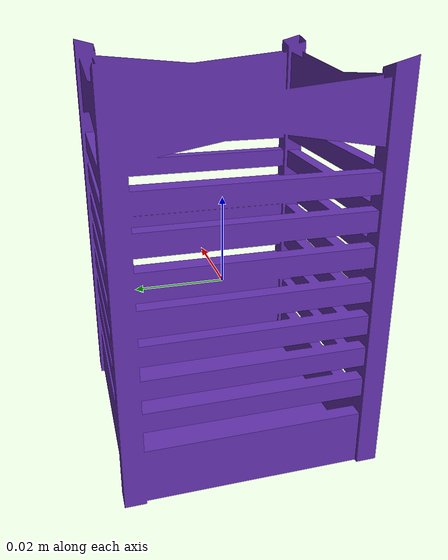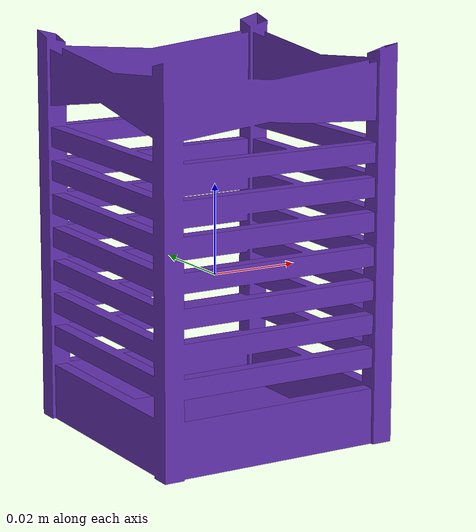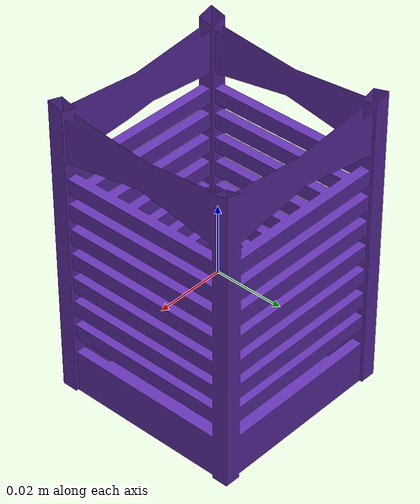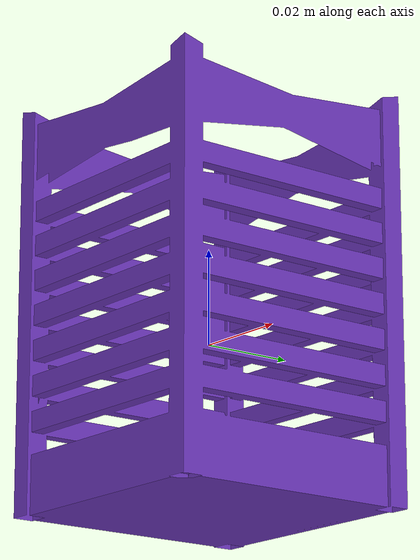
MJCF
<mujoco model="top_watertight_tiny">
  <default>
    <default group="2" type="mesh" contype="0" conaffinity="0">
      <geom group="2" type="mesh" contype="0" conaffinity="0"/>
    </default>
    <default group="3" type="mesh">
      <geom group="3" type="mesh"/>
    </default>
  </default>
  <asset>
    <mesh file="top_watertight_tiny.obj"/>
    <mesh file="top_watertight_tiny_collision_0.obj"/>
    <mesh file="top_watertight_tiny_collision_1.obj"/>
    <mesh file="top_watertight_tiny_collision_2.obj"/>
    <mesh file="top_watertight_tiny_collision_3.obj"/>
    <mesh file="top_watertight_tiny_collision_4.obj"/>
    <mesh file="top_watertight_tiny_collision_5.obj"/>
    <mesh file="top_watertight_tiny_collision_6.obj"/>
    <mesh file="top_watertight_tiny_collision_7.obj"/>
    <mesh file="top_watertight_tiny_collision_8.obj"/>
    <mesh file="top_watertight_tiny_collision_9.obj"/>
    <mesh file="top_watertight_tiny_collision_10.obj"/>
    <mesh file="top_watertight_tiny_collision_11.obj"/>
    <mesh file="top_watertight_tiny_collision_12.obj"/>
    <mesh file="top_watertight_tiny_collision_13.obj"/>
    <mesh file="top_watertight_tiny_collision_14.obj"/>
    <mesh file="top_watertight_tiny_collision_15.obj"/>
    <mesh file="top_watertight_tiny_collision_16.obj"/>
    <mesh file="top_watertight_tiny_collision_17.obj"/>
    <mesh file="top_watertight_tiny_collision_18.obj"/>
    <mesh file="top_watertight_tiny_collision_19.obj"/>
    <mesh file="top_watertight_tiny_collision_20.obj"/>
    <mesh file="top_watertight_tiny_collision_21.obj"/>
    <mesh file="top_watertight_tiny_collision_22.obj"/>
    <mesh file="top_watertight_tiny_collision_23.obj"/>
    <mesh file="top_watertight_tiny_collision_24.obj"/>
    <mesh file="top_watertight_tiny_collision_25.obj"/>
    <mesh file="top_watertight_tiny_collision_26.obj"/>
    <mesh file="top_watertight_tiny_collision_27.obj"/>
    <mesh file="top_watertight_tiny_collision_28.obj"/>
    <mesh file="top_watertight_tiny_collision_29.obj"/>
    <mesh file="top_watertight_tiny_collision_30.obj"/>
    <mesh file="top_watertight_tiny_collision_31.obj"/>
    <mesh file="top_watertight_tiny_collision_32.obj"/>
    <mesh file="top_watertight_tiny_collision_33.obj"/>
    <mesh file="top_watertight_tiny_collision_34.obj"/>
    <mesh file="top_watertight_tiny_collision_35.obj"/>
    <mesh file="top_watertight_tiny_collision_36.obj"/>
    <mesh file="top_watertight_tiny_collision_37.obj"/>
    <mesh file="top_watertight_tiny_collision_38.obj"/>
    <mesh file="top_watertight_tiny_collision_39.obj"/>
    <mesh file="top_watertight_tiny_collision_40.obj"/>
    <mesh file="top_watertight_tiny_collision_41.obj"/>
    <mesh file="top_watertight_tiny_collision_42.obj"/>
    <mesh file="top_watertight_tiny_collision_43.obj"/>
    <mesh file="top_watertight_tiny_collision_44.obj"/>
    <mesh file="top_watertight_tiny_collision_45.obj"/>
    <mesh file="top_watertight_tiny_collision_46.obj"/>
    <mesh file="top_watertight_tiny_collision_47.obj"/>
  </asset>
  <worldbody>
    <body name="top_watertight_tiny">
      <freejoint/>
      <geom mesh="top_watertight_tiny" group="2" type="mesh" rgba="0.4 0.2 0.7 1" contype="0" conaffinity="0"/>
      <geom mesh="top_watertight_tiny_collision_0" rgba="0.7308850984654601 0.9634249997734945 0.2578741019917121 1" group="3" type="mesh"/>
      <geom mesh="top_watertight_tiny_collision_1" rgba="0.5536543847100495 0.1405052810325711 0.7686017340252842 1" group="3" type="mesh"/>
      <geom mesh="top_watertight_tiny_collision_2" rgba="0.04885400872961687 0.011448909503138038 0.4264263820008638 1" group="3" type="mesh"/>
      <geom mesh="top_watertight_tiny_collision_3" rgba="0.6747612463006321 0.8860754355732646 0.035022813319588564 1" group="3" type="mesh"/>
      <geom mesh="top_watertight_tiny_collision_4" rgba="0.9008990056414056 0.2941026487750602 0.5803115646106061 1" group="3" type="mesh"/>
      <geom mesh="top_watertight_tiny_collision_5" rgba="0.7281997647587919 0.5218382297909685 0.8582709482938445 1" group="3" type="mesh"/>
      <geom mesh="top_watertight_tiny_collision_6" rgba="0.4203415058400931 0.6291385184712942 0.8365387714686479 1" group="3" type="mesh"/>
      <geom mesh="top_watertight_tiny_collision_7" rgba="0.5510470362665261 0.6621047175892832 0.012141510698514657 1" group="3" type="mesh"/>
      <geom mesh="top_watertight_tiny_collision_8" rgba="0.0665494484010295 0.8122414448364348 0.9343022097953481 1" group="3" type="mesh"/>
      <geom mesh="top_watertight_tiny_collision_9" rgba="0.7994485995587269 0.25976813358010653 0.19276107222525696 1" group="3" type="mesh"/>
      <geom mesh="top_watertight_tiny_collision_10" rgba="0.07828718719114725 0.0821159090444028 0.08345562588669375 1" group="3" type="mesh"/>
      <geom mesh="top_watertight_tiny_collision_11" rgba="0.5068038853322209 0.3858017060134168 0.12005577843953008 1" group="3" type="mesh"/>
      <geom mesh="top_watertight_tiny_collision_12" rgba="0.8418099535552044 0.5231038858526879 0.4194684719379105 1" group="3" type="mesh"/>
      <geom mesh="top_watertight_tiny_collision_13" rgba="0.7314286937128074 0.08503964611306558 0.9539290688734728 1" group="3" type="mesh"/>
      <geom mesh="top_watertight_tiny_collision_14" rgba="0.6853383581771757 0.6492143704167611 0.5594885094520968 1" group="3" type="mesh"/>
      <geom mesh="top_watertight_tiny_collision_15" rgba="0.5038560336906275 0.8584953939836631 0.09190530115314355 1" group="3" type="mesh"/>
      <geom mesh="top_watertight_tiny_collision_16" rgba="0.4427768671399469 0.4031339382964667 0.1829234425514945 1" group="3" type="mesh"/>
      <geom mesh="top_watertight_tiny_collision_17" rgba="0.49909079061893036 0.7327949779900341 0.5237975872547103 1" group="3" type="mesh"/>
      <geom mesh="top_watertight_tiny_collision_18" rgba="0.8911544704620253 0.36274941533544347 0.9411185855359895 1" group="3" type="mesh"/>
      <geom mesh="top_watertight_tiny_collision_19" rgba="0.8427497546812645 0.31240573317281994 0.5313703362672324 1" group="3" type="mesh"/>
      <geom mesh="top_watertight_tiny_collision_20" rgba="0.31944732943320453 0.6915855273487571 0.772838506266137 1" group="3" type="mesh"/>
      <geom mesh="top_watertight_tiny_collision_21" rgba="0.8269188896408641 0.9439592137844027 0.355882725558619 1" group="3" type="mesh"/>
      <geom mesh="top_watertight_tiny_collision_22" rgba="0.6786176501685021 0.8917566217379306 0.23893655415942383 1" group="3" type="mesh"/>
      <geom mesh="top_watertight_tiny_collision_23" rgba="0.8568302070136691 0.41630536812026886 0.5363593363941266 1" group="3" type="mesh"/>
      <geom mesh="top_watertight_tiny_collision_24" rgba="0.19147791649441326 0.3698566209448275 0.0797051620322552 1" group="3" type="mesh"/>
      <geom mesh="top_watertight_tiny_collision_25" rgba="0.6476099312843301 0.19309646479290365 0.003952202726209664 1" group="3" type="mesh"/>
      <geom mesh="top_watertight_tiny_collision_26" rgba="0.8397178859469325 0.7201298923206431 0.7645428377869573 1" group="3" type="mesh"/>
      <geom mesh="top_watertight_tiny_collision_27" rgba="0.575399529163612 0.14213269480576007 0.5597499098119345 1" group="3" type="mesh"/>
      <geom mesh="top_watertight_tiny_collision_28" rgba="0.9449387666377982 0.44797348517199354 0.5845022959399184 1" group="3" type="mesh"/>
      <geom mesh="top_watertight_tiny_collision_29" rgba="0.2282123812575213 0.4529742257645576 0.3278027980844678 1" group="3" type="mesh"/>
      <geom mesh="top_watertight_tiny_collision_30" rgba="0.8510929380431217 0.5161015015513094 0.8595980074553954 1" group="3" type="mesh"/>
      <geom mesh="top_watertight_tiny_collision_31" rgba="0.9985455472370521 0.2225469193730336 0.5780591587057473 1" group="3" type="mesh"/>
      <geom mesh="top_watertight_tiny_collision_32" rgba="0.09908230619656366 0.19322497314946607 0.09915469540200916 1" group="3" type="mesh"/>
      <geom mesh="top_watertight_tiny_collision_33" rgba="0.15615694710179517 0.9398747308933971 0.18896862515808244 1" group="3" type="mesh"/>
      <geom mesh="top_watertight_tiny_collision_34" rgba="0.8420802743679195 0.9931033782724947 0.12949530422394173 1" group="3" type="mesh"/>
      <geom mesh="top_watertight_tiny_collision_35" rgba="0.7735785637123617 0.6025229579052213 0.97302070737308 1" group="3" type="mesh"/>
      <geom mesh="top_watertight_tiny_collision_36" rgba="0.39384386274136496 0.6972519128493525 0.8014211243297279 1" group="3" type="mesh"/>
      <geom mesh="top_watertight_tiny_collision_37" rgba="0.784768504727181 0.7747078277619215 0.4435674713601958 1" group="3" type="mesh"/>
      <geom mesh="top_watertight_tiny_collision_38" rgba="0.5002713675494734 0.6503053221965194 0.09085930218300442 1" group="3" type="mesh"/>
      <geom mesh="top_watertight_tiny_collision_39" rgba="0.15265594554294104 0.09472400058170138 0.7429992199442608 1" group="3" type="mesh"/>
      <geom mesh="top_watertight_tiny_collision_40" rgba="0.37809374158317843 0.21678365660254095 0.11668257495430545 1" group="3" type="mesh"/>
      <geom mesh="top_watertight_tiny_collision_41" rgba="0.895052946574847 0.607396257639268 0.7258503739751917 1" group="3" type="mesh"/>
      <geom mesh="top_watertight_tiny_collision_42" rgba="0.5972664067099718 0.15860231344696996 0.46432238483731836 1" group="3" type="mesh"/>
      <geom mesh="top_watertight_tiny_collision_43" rgba="0.0026605177881450226 0.6585686706996479 0.3131847321008475 1" group="3" type="mesh"/>
      <geom mesh="top_watertight_tiny_collision_44" rgba="0.12878835251568033 0.7317087273601373 0.31702899705658716 1" group="3" type="mesh"/>
      <geom mesh="top_watertight_tiny_collision_45" rgba="0.26633696983188204 0.03314291409343906 0.8443037221460329 1" group="3" type="mesh"/>
      <geom mesh="top_watertight_tiny_collision_46" rgba="0.5933554654854957 0.05043405135831425 0.03660739841720817 1" group="3" type="mesh"/>
      <geom mesh="top_watertight_tiny_collision_47" rgba="0.9702518281220842 0.9745130173089489 0.752973861828799 1" group="3" type="mesh"/>
    </body>
  </worldbody>
</mujoco>
